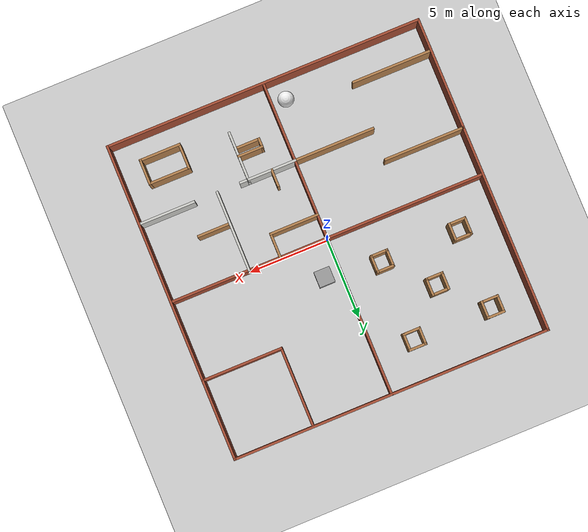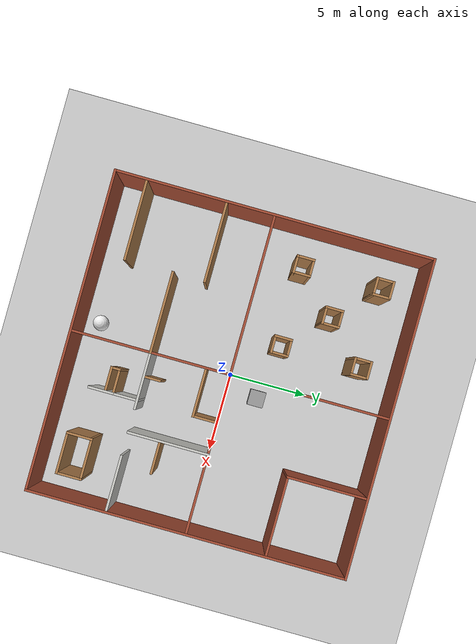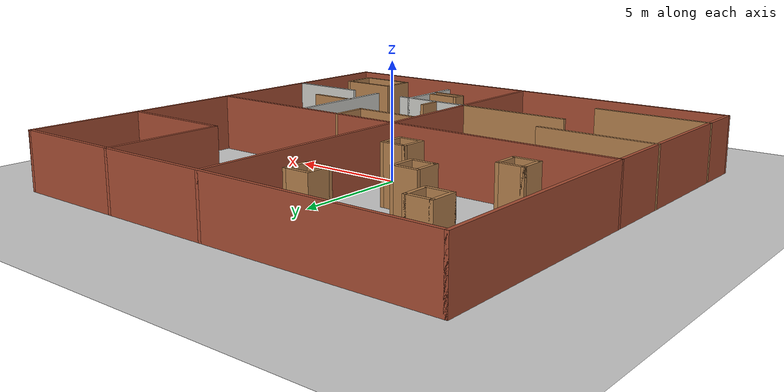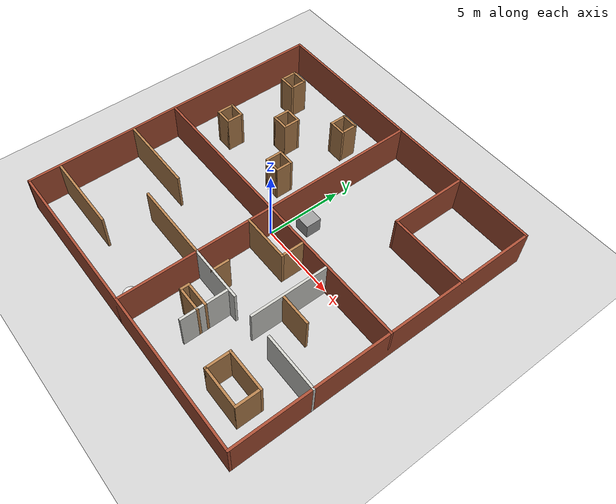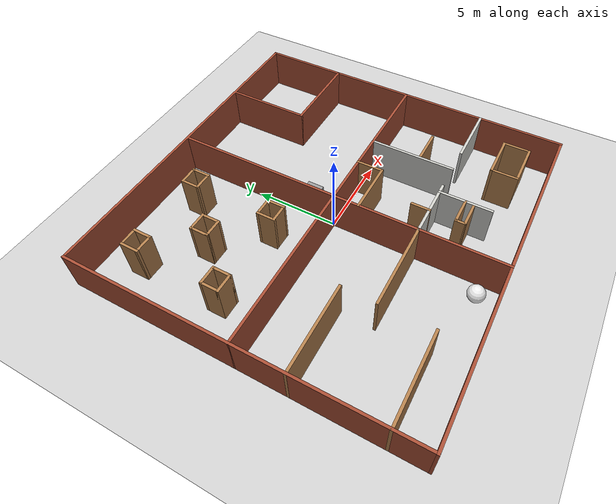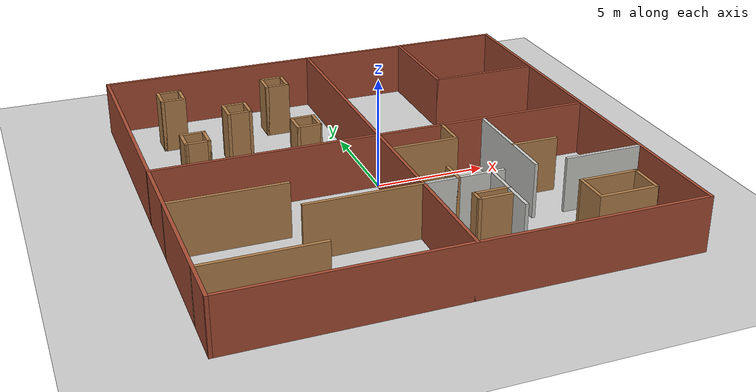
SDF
<sdf version="1.7">
 <world name="default">
  <light name="sun" type="directional">
   <pose>0 0 10 0 -0 0</pose>
   <diffuse>0.8 0.8 0.8 1</diffuse>
   <specular>0.2 0.2 0.2 1</specular>
   <attenuation>
    <range>1000</range>
    <constant>0.9</constant>
    <linear>0.01</linear>
    <quadratic>0.001</quadratic>
   </attenuation>
   <direction>-0.5 0.1 -0.9</direction>
   <spot><inner_angle>0</inner_angle><outer_angle>0</outer_angle><falloff>0</falloff></spot>
  </light>
  <model name="ground_plane">
   <static>1</static>
   <link name="link">
    <collision name="collision">
     <geometry><plane><normal>0 0 1</normal><size>100 100</size></plane></geometry>
     <surface>
      <contact><collide_bitmask>65535</collide_bitmask></contact>
      <friction><ode><mu>100</mu><mu2>50</mu2></ode></friction>
     </surface>
    </collision>
    <visual name="visual">
     <cast_shadows>0</cast_shadows>
     <geometry><plane><normal>0 0 1</normal><size>100 100</size></plane></geometry>
     <material>
      <script><uri>file://media/materials/scripts/gazebo.material</uri><name>Gazebo/Grey</name></script>
     </material>
    </visual>
   </link>
  </model>
  <gravity>0 0 -9.8</gravity>
  <magnetic_field>6e-06 2.3e-05 -4.2e-05</magnetic_field>
  <atmosphere type="adiabatic"/>
  <physics type="ode">
   <max_step_size>0.001</max_step_size>
   <real_time_factor>1</real_time_factor>
   <real_time_update_rate>1000</real_time_update_rate>
  </physics>
  <scene><ambient>0.4 0.4 0.4 1</ambient><background>0.7 0.7 0.7 1</background><shadows>1</shadows></scene>
  <spherical_coordinates>
   <surface_model>EARTH_WGS84</surface_model>
   <latitude_deg>0</latitude_deg>
   <longitude_deg>0</longitude_deg>
   <elevation>0</elevation>
   <heading_deg>0</heading_deg>
  </spherical_coordinates>
  <model name="unit_box">
   <pose>1 2 0.5 0 -0 0</pose>
   <link name="link">
    <inertial>
     <mass>1</mass>
     <inertia>
      <ixx>0.166667</ixx>
      <ixy>0</ixy>
      <ixz>0</ixz>
      <iyy>0.166667</iyy>
      <iyz>0</iyz>
      <izz>0.166667</izz>
     </inertia>
    </inertial>
    <collision name="collision"><geometry><box><size>1 1 1</size></box></geometry></collision>
    <visual name="visual">
     <geometry><box><size>1 1 1</size></box></geometry>
     <material>
      <script><name>Gazebo/Grey</name><uri>file://media/materials/scripts/gazebo.material</uri></script>
     </material>
    </visual>
   </link>
  </model>
  <model name="unit_sphere">
   <pose>-0.953435 -8.8497 0.5 0 -0 0</pose>
   <link name="link">
    <inertial>
     <mass>1</mass>
     <inertia><ixx>0.1</ixx><ixy>0</ixy><ixz>0</ixz><iyy>0.1</iyy><iyz>0</iyz><izz>0.1</izz></inertia>
    </inertial>
    <collision name="collision"><geometry><sphere><radius>0.0005</radius></sphere></geometry></collision>
    <visual name="visual">
     <geometry><sphere><radius>0.50000</radius></sphere></geometry>
     <material>
      <script><name>Gazebo/White</name><uri>file://media/materials/scripts/gazebo.material</uri></script>
     </material>
    </visual>
   </link>
  </model>
  <model name="Room_Curriculum">
   <link name="Wall_0">
    <collision name="Wall_0_Collision">
     <geometry><box><size>20.15 0.15 2.5</size></box></geometry>
     <pose>0 0 1.25 0 -0 0</pose>
    </collision>
    <visual name="Wall_0_Visual">
     <pose>0 0 1.25 0 -0 0</pose>
     <geometry><box><size>20.15 0.15 2.5</size></box></geometry>
     <material>
      <script><uri>file://media/materials/scripts/gazebo.material</uri><name>Gazebo/Bricks</name></script>
      <ambient>1 1 1 1</ambient>
     </material>
     <meta><layer>0</layer></meta>
    </visual>
    <pose>0 10 0 0 -0 0</pose>
   </link>
   <link name="Wall_1">
    <collision name="Wall_1_Collision">
     <geometry><box><size>20.15 0.15 2.5</size></box></geometry>
     <pose>0 0 1.25 0 -0 0</pose>
    </collision>
    <visual name="Wall_1_Visual">
     <pose>0 0 1.25 0 -0 0</pose>
     <geometry><box><size>20.15 0.15 2.5</size></box></geometry>
     <material>
      <script><uri>file://media/materials/scripts/gazebo.material</uri><name>Gazebo/Bricks</name></script>
      <ambient>1 1 1 1</ambient>
     </material>
     <meta><layer>0</layer></meta>
    </visual>
    <pose>10 0 0 0 0 -1.5708</pose>
   </link>
   <link name="Wall_15">
    <collision name="Wall_15_Collision">
     <geometry><box><size>5.15 0.15 2.5</size></box></geometry>
     <pose>0 0 1.25 0 -0 0</pose>
    </collision>
    <visual name="Wall_15_Visual">
     <pose>0 0 1.25 0 -0 0</pose>
     <geometry><box><size>5.15 0.15 2.5</size></box></geometry>
     <material>
      <script><uri>file://media/materials/scripts/gazebo.material</uri><name>Gazebo/Bricks</name></script>
      <ambient>1 1 1 1</ambient>
     </material>
     <meta><layer>0</layer></meta>
    </visual>
    <pose>5 7.5 0 0 0 -1.5708</pose>
   </link>
   <link name="Wall_16">
    <collision name="Wall_16_Collision">
     <geometry><box><size>5.15 0.15 2.5</size></box></geometry>
     <pose>0 0 1.25 0 -0 0</pose>
    </collision>
    <visual name="Wall_16_Visual">
     <pose>0 0 1.25 0 -0 0</pose>
     <geometry><box><size>5.15 0.15 2.5</size></box></geometry>
     <material>
      <script><uri>file://media/materials/scripts/gazebo.material</uri><name>Gazebo/Bricks</name></script>
      <ambient>1 1 1 1</ambient>
     </material>
     <meta><layer>0</layer></meta>
    </visual>
    <pose>7.5 5 0 0 -0 0</pose>
   </link>
   <link name="Wall_18">
    <collision name="Wall_18_Collision">
     <geometry><box><size>1.15 0.15 2.5</size></box></geometry>
     <pose>0 0 1.25 0 -0 0</pose>
    </collision>
    <visual name="Wall_18_Visual">
     <pose>0 0 1.25 0 -0 0</pose>
     <geometry><box><size>1.15 0.15 2.5</size></box></geometry>
     <material>
      <script><uri>file://media/materials/scripts/gazebo.material</uri><name>Gazebo/Wood</name></script>
      <ambient>1 1 1 1</ambient>
     </material>
     <meta><layer>0</layer></meta>
    </visual>
    <pose>-7.5 8 0 0 -0 0</pose>
   </link>
   <link name="Wall_19">
    <collision name="Wall_19_Collision">
     <geometry><box><size>1.15 0.15 2.5</size></box></geometry>
     <pose>0 0 1.25 0 -0 0</pose>
    </collision>
    <visual name="Wall_19_Visual">
     <pose>0 0 1.25 0 -0 0</pose>
     <geometry><box><size>1.15 0.15 2.5</size></box></geometry>
     <material>
      <script><uri>file://media/materials/scripts/gazebo.material</uri><name>Gazebo/Wood</name></script>
      <ambient>1 1 1 1</ambient>
     </material>
     <meta><layer>0</layer></meta>
    </visual>
    <pose>-7 7.5 0 0 0 -1.5708</pose>
   </link>
   <link name="Wall_2">
    <collision name="Wall_2_Collision">
     <geometry><box><size>20.15 0.15 2.5</size></box></geometry>
     <pose>0 0 1.25 0 -0 0</pose>
    </collision>
    <visual name="Wall_2_Visual">
     <pose>0 0 1.25 0 -0 0</pose>
     <geometry><box><size>20.15 0.15 2.5</size></box></geometry>
     <material>
      <script><uri>file://media/materials/scripts/gazebo.material</uri><name>Gazebo/Bricks</name></script>
      <ambient>1 1 1 1</ambient>
     </material>
     <meta><layer>0</layer></meta>
    </visual>
    <pose>0 -10 0 0 -0 3.14159</pose>
   </link>
   <link name="Wall_20">
    <collision name="Wall_20_Collision">
     <geometry><box><size>1.15 0.15 2.5</size></box></geometry>
     <pose>0 0 1.25 0 -0 0</pose>
    </collision>
    <visual name="Wall_20_Visual">
     <pose>0 0 1.25 0 -0 0</pose>
     <geometry><box><size>1.15 0.15 2.5</size></box></geometry>
     <material>
      <script><uri>file://media/materials/scripts/gazebo.material</uri><name>Gazebo/Wood</name></script>
      <ambient>1 1 1 1</ambient>
     </material>
     <meta><layer>0</layer></meta>
    </visual>
    <pose>-7.5 7 0 0 -0 3.14159</pose>
   </link>
   <link name="Wall_21">
    <collision name="Wall_21_Collision">
     <geometry><box><size>1.15 0.15 2.5</size></box></geometry>
     <pose>0 0 1.25 0 -0 0</pose>
    </collision>
    <visual name="Wall_21_Visual">
     <pose>0 0 1.25 0 -0 0</pose>
     <geometry><box><size>1.15 0.15 2.5</size></box></geometry>
     <material>
      <script><uri>file://media/materials/scripts/gazebo.material</uri><name>Gazebo/Wood</name></script>
      <ambient>1 1 1 1</ambient>
     </material>
     <meta><layer>0</layer></meta>
    </visual>
    <pose>-8 7.5 0 0 -0 1.5708</pose>
   </link>
   <link name="Wall_23">
    <collision name="Wall_23_Collision">
     <geometry><box><size>1.15 0.15 2.5</size></box></geometry>
     <pose>0 0 1.25 0 -0 0</pose>
    </collision>
    <visual name="Wall_23_Visual">
     <pose>0 0 1.25 0 -0 0</pose>
     <geometry><box><size>1.15 0.15 2.5</size></box></geometry>
     <material>
      <script><uri>file://media/materials/scripts/gazebo.material</uri><name>Gazebo/Wood</name></script>
      <ambient>1 1 1 1</ambient>
     </material>
     <meta><layer>0</layer></meta>
    </visual>
    <pose>-5.5 5 0 0 0 -1.5708</pose>
   </link>
   <link name="Wall_24">
    <collision name="Wall_24_Collision">
     <geometry><box><size>1.15 0.15 2.5</size></box></geometry>
     <pose>0 0 1.25 0 -0 0</pose>
    </collision>
    <visual name="Wall_24_Visual">
     <pose>0 0 1.25 0 -0 0</pose>
     <geometry><box><size>1.15 0.15 2.5</size></box></geometry>
     <material>
      <script><uri>file://media/materials/scripts/gazebo.material</uri><name>Gazebo/Wood</name></script>
      <ambient>1 1 1 1</ambient>
     </material>
     <meta><layer>0</layer></meta>
    </visual>
    <pose>-5 4.5 0 0 -0 0</pose>
   </link>
   <link name="Wall_25">
    <collision name="Wall_25_Collision">
     <geometry><box><size>1.15 0.15 2.5</size></box></geometry>
     <pose>0 0 1.25 0 -0 0</pose>
    </collision>
    <visual name="Wall_25_Visual">
     <pose>0 0 1.25 0 -0 0</pose>
     <geometry><box><size>1.15 0.15 2.5</size></box></geometry>
     <material>
      <script><uri>file://media/materials/scripts/gazebo.material</uri><name>Gazebo/Wood</name></script>
      <ambient>1 1 1 1</ambient>
     </material>
     <meta><layer>0</layer></meta>
    </visual>
    <pose>-4.5 5 0 0 -0 1.5708</pose>
   </link>
   <link name="Wall_26">
    <collision name="Wall_26_Collision">
     <geometry><box><size>1.15 0.15 2.5</size></box></geometry>
     <pose>0 0 1.25 0 -0 0</pose>
    </collision>
    <visual name="Wall_26_Visual">
     <pose>0 0 1.25 0 -0 0</pose>
     <geometry><box><size>1.15 0.15 2.5</size></box></geometry>
     <material>
      <script><uri>file://media/materials/scripts/gazebo.material</uri><name>Gazebo/Wood</name></script>
      <ambient>1 1 1 1</ambient>
     </material>
     <meta><layer>0</layer></meta>
    </visual>
    <pose>-5 5.5 0 0 -0 3.14159</pose>
   </link>
   <link name="Wall_28">
    <collision name="Wall_28_Collision">
     <geometry><box><size>1.15 0.15 2.5</size></box></geometry>
     <pose>0 0 1.25 0 -0 0</pose>
    </collision>
    <visual name="Wall_28_Visual">
     <pose>0 0 1.25 0 -0 0</pose>
     <geometry><box><size>1.15 0.15 2.5</size></box></geometry>
     <material>
      <script><uri>file://media/materials/scripts/gazebo.material</uri><name>Gazebo/Wood</name></script>
      <ambient>1 1 1 1</ambient>
     </material>
     <meta><layer>0</layer></meta>
    </visual>
    <pose>-2.5 8 0 0 -0 0</pose>
   </link>
   <link name="Wall_29">
    <collision name="Wall_29_Collision">
     <geometry><box><size>1.15 0.15 2.5</size></box></geometry>
     <pose>0 0 1.25 0 -0 0</pose>
    </collision>
    <visual name="Wall_29_Visual">
     <pose>0 0 1.25 0 -0 0</pose>
     <geometry><box><size>1.15 0.15 2.5</size></box></geometry>
     <material>
      <script><uri>file://media/materials/scripts/gazebo.material</uri><name>Gazebo/Wood</name></script>
      <ambient>1 1 1 1</ambient>
     </material>
     <meta><layer>0</layer></meta>
    </visual>
    <pose>-2 7.5 0 0 0 -1.5708</pose>
   </link>
   <link name="Wall_3">
    <collision name="Wall_3_Collision">
     <geometry><box><size>20.15 0.15 2.5</size></box></geometry>
     <pose>0 0 1.25 0 -0 0</pose>
    </collision>
    <visual name="Wall_3_Visual">
     <pose>0 0 1.25 0 -0 0</pose>
     <geometry><box><size>20.15 0.15 2.5</size></box></geometry>
     <material>
      <script><uri>file://media/materials/scripts/gazebo.material</uri><name>Gazebo/Bricks</name></script>
      <ambient>1 1 1 1</ambient>
     </material>
     <meta><layer>0</layer></meta>
    </visual>
    <pose>-10 0 0 0 -0 1.5708</pose>
   </link>
   <link name="Wall_30">
    <collision name="Wall_30_Collision">
     <geometry><box><size>1.15 0.15 2.5</size></box></geometry>
     <pose>0 0 1.25 0 -0 0</pose>
    </collision>
    <visual name="Wall_30_Visual">
     <pose>0 0 1.25 0 -0 0</pose>
     <geometry><box><size>1.15 0.15 2.5</size></box></geometry>
     <material>
      <script><uri>file://media/materials/scripts/gazebo.material</uri><name>Gazebo/Wood</name></script>
      <ambient>1 1 1 1</ambient>
     </material>
     <meta><layer>0</layer></meta>
    </visual>
    <pose>-2.5 7 0 0 -0 3.14159</pose>
   </link>
   <link name="Wall_31">
    <collision name="Wall_31_Collision">
     <geometry><box><size>1.15 0.15 2.5</size></box></geometry>
     <pose>0 0 1.25 0 -0 0</pose>
    </collision>
    <visual name="Wall_31_Visual">
     <pose>0 0 1.25 0 -0 0</pose>
     <geometry><box><size>1.15 0.15 2.5</size></box></geometry>
     <material>
      <script><uri>file://media/materials/scripts/gazebo.material</uri><name>Gazebo/Wood</name></script>
      <ambient>1 1 1 1</ambient>
     </material>
     <meta><layer>0</layer></meta>
    </visual>
    <pose>-3 7.5 0 0 -0 1.5708</pose>
   </link>
   <link name="Wall_33">
    <collision name="Wall_33_Collision">
     <geometry><box><size>1.15 0.15 2.5</size></box></geometry>
     <pose>0 0 1.25 0 -0 0</pose>
    </collision>
    <visual name="Wall_33_Visual">
     <pose>0 0 1.25 0 -0 0</pose>
     <geometry><box><size>1.15 0.15 2.5</size></box></geometry>
     <material>
      <script><uri>file://media/materials/scripts/gazebo.material</uri><name>Gazebo/Wood</name></script>
      <ambient>1 1 1 1</ambient>
     </material>
     <meta><layer>0</layer></meta>
    </visual>
    <pose>-8 2.5 0 0 0 -1.5708</pose>
   </link>
   <link name="Wall_34">
    <collision name="Wall_34_Collision">
     <geometry><box><size>1.15 0.15 2.5</size></box></geometry>
     <pose>0 0 1.25 0 -0 0</pose>
    </collision>
    <visual name="Wall_34_Visual">
     <pose>0 0 1.25 0 -0 0</pose>
     <geometry><box><size>1.15 0.15 2.5</size></box></geometry>
     <material>
      <script><uri>file://media/materials/scripts/gazebo.material</uri><name>Gazebo/Wood</name></script>
      <ambient>1 1 1 1</ambient>
     </material>
     <meta><layer>0</layer></meta>
    </visual>
    <pose>-7.5 2 0 0 -0 0</pose>
   </link>
   <link name="Wall_35">
    <collision name="Wall_35_Collision">
     <geometry><box><size>1.15 0.15 2.5</size></box></geometry>
     <pose>0 0 1.25 0 -0 0</pose>
    </collision>
    <visual name="Wall_35_Visual">
     <pose>0 0 1.25 0 -0 0</pose>
     <geometry><box><size>1.15 0.15 2.5</size></box></geometry>
     <material>
      <script><uri>file://media/materials/scripts/gazebo.material</uri><name>Gazebo/Wood</name></script>
      <ambient>1 1 1 1</ambient>
     </material>
     <meta><layer>0</layer></meta>
    </visual>
    <pose>-7 2.5 0 0 -0 1.5708</pose>
   </link>
   <link name="Wall_36">
    <collision name="Wall_36_Collision">
     <geometry><box><size>1.15 0.15 2.5</size></box></geometry>
     <pose>0 0 1.25 0 -0 0</pose>
    </collision>
    <visual name="Wall_36_Visual">
     <pose>0 0 1.25 0 -0 0</pose>
     <geometry><box><size>1.15 0.15 2.5</size></box></geometry>
     <material>
      <script><uri>file://media/materials/scripts/gazebo.material</uri><name>Gazebo/Wood</name></script>
      <ambient>1 1 1 1</ambient>
     </material>
     <meta><layer>0</layer></meta>
    </visual>
    <pose>-7.5 3 0 0 -0 3.14159</pose>
   </link>
   <link name="Wall_38">
    <collision name="Wall_38_Collision">
     <geometry><box><size>1.15 0.15 2.5</size></box></geometry>
     <pose>0 0 1.25 0 -0 0</pose>
    </collision>
    <visual name="Wall_38_Visual">
     <pose>0 0 1.25 0 -0 0</pose>
     <geometry><box><size>1.15 0.15 2.5</size></box></geometry>
     <material>
      <script><uri>file://media/materials/scripts/gazebo.material</uri><name>Gazebo/Wood</name></script>
      <ambient>1 1 1 1</ambient>
     </material>
     <meta><layer>0</layer></meta>
    </visual>
    <pose>-3 2.5 0 0 0 -1.5708</pose>
   </link>
   <link name="Wall_39">
    <collision name="Wall_39_Collision">
     <geometry><box><size>1.15 0.15 2.5</size></box></geometry>
     <pose>0 0 1.25 0 -0 0</pose>
    </collision>
    <visual name="Wall_39_Visual">
     <pose>0 0 1.25 0 -0 0</pose>
     <geometry><box><size>1.15 0.15 2.5</size></box></geometry>
     <material>
      <script><uri>file://media/materials/scripts/gazebo.material</uri><name>Gazebo/Wood</name></script>
      <ambient>1 1 1 1</ambient>
     </material>
     <meta><layer>0</layer></meta>
    </visual>
    <pose>-2.5 2 0 0 -0 0</pose>
   </link>
   <link name="Wall_40">
    <collision name="Wall_40_Collision">
     <geometry><box><size>1.15 0.15 2.5</size></box></geometry>
     <pose>0 0 1.25 0 -0 0</pose>
    </collision>
    <visual name="Wall_40_Visual">
     <pose>0 0 1.25 0 -0 0</pose>
     <geometry><box><size>1.15 0.15 2.5</size></box></geometry>
     <material>
      <script><uri>file://media/materials/scripts/gazebo.material</uri><name>Gazebo/Wood</name></script>
      <ambient>1 1 1 1</ambient>
     </material>
     <meta><layer>0</layer></meta>
    </visual>
    <pose>-2 2.5 0 0 -0 1.5708</pose>
   </link>
   <link name="Wall_41">
    <collision name="Wall_41_Collision">
     <geometry><box><size>1.15 0.15 2.5</size></box></geometry>
     <pose>0 0 1.25 0 -0 0</pose>
    </collision>
    <visual name="Wall_41_Visual">
     <pose>0 0 1.25 0 -0 0</pose>
     <geometry><box><size>1.15 0.15 2.5</size></box></geometry>
     <material>
      <script><uri>file://media/materials/scripts/gazebo.material</uri><name>Gazebo/Wood</name></script>
      <ambient>1 1 1 1</ambient>
     </material>
     <meta><layer>0</layer></meta>
    </visual>
    <pose>-2.5 3 0 0 -0 3.14159</pose>
   </link>
   <link name="Wall_43">
    <collision name="Wall_43_Collision">
     <geometry><box><size>5.15 0.15 2.5</size></box></geometry>
     <pose>0 0 1.25 0 -0 0</pose>
    </collision>
    <visual name="Wall_43_Visual">
     <pose>0 0 1.25 0 -0 0</pose>
     <geometry><box><size>5.15 0.15 2.5</size></box></geometry>
     <material>
      <script><uri>file://media/materials/scripts/gazebo.material</uri><name>Gazebo/Wood</name></script>
      <ambient>1 1 1 1</ambient>
     </material>
     <meta><layer>0</layer></meta>
    </visual>
    <pose>-7.5 -3 0 0 -0 0</pose>
   </link>
   <link name="Wall_45">
    <collision name="Wall_45_Collision">
     <geometry><box><size>5.15 0.15 2.5</size></box></geometry>
     <pose>0 0 1.25 0 -0 0</pose>
    </collision>
    <visual name="Wall_45_Visual">
     <pose>0 0 1.25 0 -0 0</pose>
     <geometry><box><size>5.15 0.15 2.5</size></box></geometry>
     <material>
      <script><uri>file://media/materials/scripts/gazebo.material</uri><name>Gazebo/Wood</name></script>
      <ambient>1 1 1 1</ambient>
     </material>
     <meta><layer>0</layer></meta>
    </visual>
    <pose>-2.5 -5 0 0 -0 3.14159</pose>
   </link>
   <link name="Wall_47">
    <collision name="Wall_47_Collision">
     <geometry><box><size>5.15 0.15 2.5</size></box></geometry>
     <pose>0 0 1.25 0 -0 0</pose>
    </collision>
    <visual name="Wall_47_Visual">
     <pose>0 0 1.25 0 -0 0</pose>
     <geometry><box><size>5.15 0.15 2.5</size></box></geometry>
     <material>
      <script><uri>file://media/materials/scripts/gazebo.material</uri><name>Gazebo/Wood</name></script>
      <ambient>1 1 1 1</ambient>
     </material>
     <meta><layer>0</layer></meta>
    </visual>
    <pose>-7.5 -8 0 0 -0 0</pose>
   </link>
   <link name="Wall_5">
    <collision name="Wall_5_Collision">
     <geometry><box><size>20.15 0.15 2.5</size></box></geometry>
     <pose>0 0 1.25 0 -0 0</pose>
    </collision>
    <visual name="Wall_5_Visual">
     <pose>0 0 1.25 0 -0 0</pose>
     <geometry><box><size>20.15 0.15 2.5</size></box></geometry>
     <material>
      <script><uri>file://media/materials/scripts/gazebo.material</uri><name>Gazebo/Bricks</name></script>
      <ambient>1 1 1 1</ambient>
     </material>
     <meta><layer>0</layer></meta>
    </visual>
    <pose>0 0 0 0 0 -1.5708</pose>
   </link>
   <link name="Wall_52">
    <collision name="Wall_52_Collision">
     <geometry><box><size>5.15 0.15 2.5</size></box></geometry>
     <pose>0 0 1.25 0 -0 0</pose>
    </collision>
    <visual name="Wall_52_Visual">
     <pose>0 0 1.25 0 -0 0</pose>
     <geometry><box><size>5.15 0.15 2.5</size></box></geometry>
     <material>
      <script><uri>file://media/materials/scripts/gazebo.material</uri><name>Gazebo/CeilingTiled</name></script>
      <ambient>1 1 1 1</ambient>
     </material>
     <meta><layer>0</layer></meta>
    </visual>
    <pose>5 -2.5 0 0 0 -1.5708</pose>
   </link>
   <link name="Wall_54">
    <collision name="Wall_54_Collision">
     <geometry><box><size>2.15 0.15 2.5</size></box></geometry>
     <pose>0 0 1.25 0 -0 0</pose>
    </collision>
    <visual name="Wall_54_Visual">
     <pose>0 0 1.25 0 -0 0</pose>
     <geometry><box><size>2.15 0.15 2.5</size></box></geometry>
     <material>
      <script><uri>file://media/materials/scripts/gazebo.material</uri><name>Gazebo/Wood</name></script>
      <ambient>1 1 1 1</ambient>
     </material>
     <meta><layer>0</layer></meta>
    </visual>
    <pose>6 -3 0 0 -0 0</pose>
   </link>
   <link name="Wall_59">
    <collision name="Wall_59_Collision">
     <geometry><box><size>3.65 0.15 2.5</size></box></geometry>
     <pose>0 0 1.25 0 -0 0</pose>
    </collision>
    <visual name="Wall_59_Visual">
     <pose>0 0 1.25 0 -0 0</pose>
     <geometry><box><size>3.65 0.15 2.5</size></box></geometry>
     <material>
      <script><uri>file://media/materials/scripts/gazebo.material</uri><name>Gazebo/CeilingTiled</name></script>
      <ambient>1 1 1 1</ambient>
     </material>
     <meta><layer>0</layer></meta>
    </visual>
    <pose>1.75 -5 0 0 -0 0</pose>
   </link>
   <link name="Wall_61">
    <collision name="Wall_61_Collision">
     <geometry><box><size>3.65 0.15 2.5</size></box></geometry>
     <pose>0 0 1.25 0 -0 0</pose>
    </collision>
    <visual name="Wall_61_Visual">
     <pose>0 0 1.25 0 -0 0</pose>
     <geometry><box><size>3.65 0.15 2.5</size></box></geometry>
     <material>
      <script><uri>file://media/materials/scripts/gazebo.material</uri><name>Gazebo/CeilingTiled</name></script>
      <ambient>1 1 1 1</ambient>
     </material>
     <meta><layer>0</layer></meta>
    </visual>
    <pose>8.25 -5 0 0 -0 3.14159</pose>
   </link>
   <link name="Wall_63">
    <collision name="Wall_63_Collision">
     <geometry><box><size>1.15 0.15 2.5</size></box></geometry>
     <pose>0 0 1.25 0 -0 0</pose>
    </collision>
    <visual name="Wall_63_Visual">
     <pose>0 0 1.25 0 -0 0</pose>
     <geometry><box><size>1.15 0.15 2.5</size></box></geometry>
     <material>
      <script><uri>file://media/materials/scripts/gazebo.material</uri><name>Gazebo/Wood</name></script>
      <ambient>1 1 1 1</ambient>
     </material>
     <meta><layer>0</layer></meta>
    </visual>
    <pose>1.5 -4.5 0 0 0 -1.5708</pose>
   </link>
   <link name="Wall_65">
    <collision name="Wall_65_Collision">
     <geometry><box><size>3.15 0.15 2.5</size></box></geometry>
     <pose>0 0 1.25 0 -0 0</pose>
    </collision>
    <visual name="Wall_65_Visual">
     <pose>0 0 1.25 0 -0 0</pose>
     <geometry><box><size>3.15 0.15 2.5</size></box></geometry>
     <material>
      <script><uri>file://media/materials/scripts/gazebo.material</uri><name>Gazebo/CeilingTiled</name></script>
      <ambient>1 1 1 1</ambient>
     </material>
     <meta><layer>0</layer></meta>
    </visual>
    <pose>3 -6.5 0 0 0 -1.5708</pose>
   </link>
   <link name="Wall_67">
    <collision name="Wall_67_Collision">
     <geometry><box><size>1.65 0.15 2.5</size></box></geometry>
     <pose>0 0 1.25 0 -0 0</pose>
    </collision>
    <visual name="Wall_67_Visual">
     <pose>0 0 1.25 0 -0 0</pose>
     <geometry><box><size>1.65 0.15 2.5</size></box></geometry>
     <material>
      <script><uri>file://media/materials/scripts/gazebo.material</uri><name>Gazebo/Wood</name></script>
      <ambient>1 1 1 1</ambient>
     </material>
     <meta><layer>0</layer></meta>
    </visual>
    <pose>2.25 -7 0 0 -0 3.14159</pose>
   </link>
   <link name="Wall_68">
    <collision name="Wall_68_Collision">
     <geometry><box><size>0.65 0.15 2.5</size></box></geometry>
     <pose>0 0 1.25 0 -0 0</pose>
    </collision>
    <visual name="Wall_68_Visual">
     <pose>0 0 1.25 0 -0 0</pose>
     <geometry><box><size>0.65 0.15 2.5</size></box></geometry>
     <material>
      <script><uri>file://media/materials/scripts/gazebo.material</uri><name>Gazebo/Wood</name></script>
      <ambient>1 1 1 1</ambient>
     </material>
     <meta><layer>0</layer></meta>
    </visual>
    <pose>1.5 -6.75 0 0 -0 1.5708</pose>
   </link>
   <link name="Wall_69">
    <collision name="Wall_69_Collision">
     <geometry><box><size>1.65 0.15 2.5</size></box></geometry>
     <pose>0 0 1.25 0 -0 0</pose>
    </collision>
    <visual name="Wall_69_Visual">
     <pose>0 0 1.25 0 -0 0</pose>
     <geometry><box><size>1.65 0.15 2.5</size></box></geometry>
     <material>
      <script><uri>file://media/materials/scripts/gazebo.material</uri><name>Gazebo/Wood</name></script>
      <ambient>1 1 1 1</ambient>
     </material>
     <meta><layer>0</layer></meta>
    </visual>
    <pose>2.25 -6.5 0 0 -0 0</pose>
   </link>
   <link name="Wall_7">
    <collision name="Wall_7_Collision">
     <geometry><box><size>20.15 0.15 2.5</size></box></geometry>
     <pose>0 0 1.25 0 -0 0</pose>
    </collision>
    <visual name="Wall_7_Visual">
     <pose>0 0 1.25 0 -0 0</pose>
     <geometry><box><size>20.15 0.15 2.5</size></box></geometry>
     <material>
      <script><uri>file://media/materials/scripts/gazebo.material</uri><name>Gazebo/Bricks</name></script>
      <ambient>1 1 1 1</ambient>
     </material>
     <meta><layer>0</layer></meta>
    </visual>
   </link>
   <link name="Wall_71">
    <collision name="Wall_71_Collision">
     <geometry><box><size>1.65 0.15 2.5</size></box></geometry>
     <pose>0 0 1.25 0 -0 0</pose>
    </collision>
    <visual name="Wall_71_Visual">
     <pose>0 0 1.25 0 -0 0</pose>
     <geometry><box><size>1.65 0.15 2.5</size></box></geometry>
     <material>
      <script><uri>file://media/materials/scripts/gazebo.material</uri><name>Gazebo/Wood</name></script>
      <ambient>1 1 1 1</ambient>
     </material>
     <meta><layer>0</layer></meta>
    </visual>
    <pose>6 -7.75 0 0 0 -1.5708</pose>
   </link>
   <link name="Wall_72">
    <collision name="Wall_72_Collision">
     <geometry><box><size>2.65 0.15 2.5</size></box></geometry>
     <pose>0 0 1.25 0 -0 0</pose>
    </collision>
    <visual name="Wall_72_Visual">
     <pose>0 0 1.25 0 -0 0</pose>
     <geometry><box><size>2.65 0.15 2.5</size></box></geometry>
     <material>
      <script><uri>file://media/materials/scripts/gazebo.material</uri><name>Gazebo/Wood</name></script>
      <ambient>1 1 1 1</ambient>
     </material>
     <meta><layer>0</layer></meta>
    </visual>
    <pose>7.25 -8.5 0 0 -0 0</pose>
   </link>
   <link name="Wall_73">
    <collision name="Wall_73_Collision">
     <geometry><box><size>1.65 0.15 2.5</size></box></geometry>
     <pose>0 0 1.25 0 -0 0</pose>
    </collision>
    <visual name="Wall_73_Visual">
     <pose>0 0 1.25 0 -0 0</pose>
     <geometry><box><size>1.65 0.15 2.5</size></box></geometry>
     <material>
      <script><uri>file://media/materials/scripts/gazebo.material</uri><name>Gazebo/Wood</name></script>
      <ambient>1 1 1 1</ambient>
     </material>
     <meta><layer>0</layer></meta>
    </visual>
    <pose>8.5 -7.75 0 0 -0 1.5708</pose>
   </link>
   <link name="Wall_74">
    <collision name="Wall_74_Collision">
     <geometry><box><size>2.65 0.15 2.5</size></box></geometry>
     <pose>0 0 1.25 0 -0 0</pose>
    </collision>
    <visual name="Wall_74_Visual">
     <pose>0 0 1.25 0 -0 0</pose>
     <geometry><box><size>2.65 0.15 2.5</size></box></geometry>
     <material>
      <script><uri>file://media/materials/scripts/gazebo.material</uri><name>Gazebo/Wood</name></script>
      <ambient>1 1 1 1</ambient>
     </material>
     <meta><layer>0</layer></meta>
    </visual>
    <pose>7.25 -7 0 0 -0 3.14159</pose>
   </link>
   <link name="Wall_76">
    <collision name="Wall_76_Collision">
     <geometry><box><size>1.65 0.15 2.5</size></box></geometry>
     <pose>0 0 1.25 0 -0 0</pose>
    </collision>
    <visual name="Wall_76_Visual">
     <pose>0 0 1.25 0 -0 0</pose>
     <geometry><box><size>1.65 0.15 2.5</size></box></geometry>
     <material>
      <script><uri>file://media/materials/scripts/gazebo.material</uri><name>Gazebo/Wood</name></script>
      <ambient>1 1 1 1</ambient>
     </material>
     <meta><layer>0</layer></meta>
    </visual>
    <pose>3 -0.75 0 0 0 -1.5708</pose>
   </link>
   <link name="Wall_77">
    <collision name="Wall_77_Collision">
     <geometry><box><size>3.15 0.15 2.5</size></box></geometry>
     <pose>0 0 1.25 0 -0 0</pose>
    </collision>
    <visual name="Wall_77_Visual">
     <pose>0 0 1.25 0 -0 0</pose>
     <geometry><box><size>3.15 0.15 2.5</size></box></geometry>
     <material>
      <script><uri>file://media/materials/scripts/gazebo.material</uri><name>Gazebo/Wood</name></script>
      <ambient>1 1 1 1</ambient>
     </material>
     <meta><layer>0</layer></meta>
    </visual>
    <pose>1.5 -1.5 0 0 -0 3.14159</pose>
   </link>
   <static>1</static>
  </model>
 </world>
</sdf>
